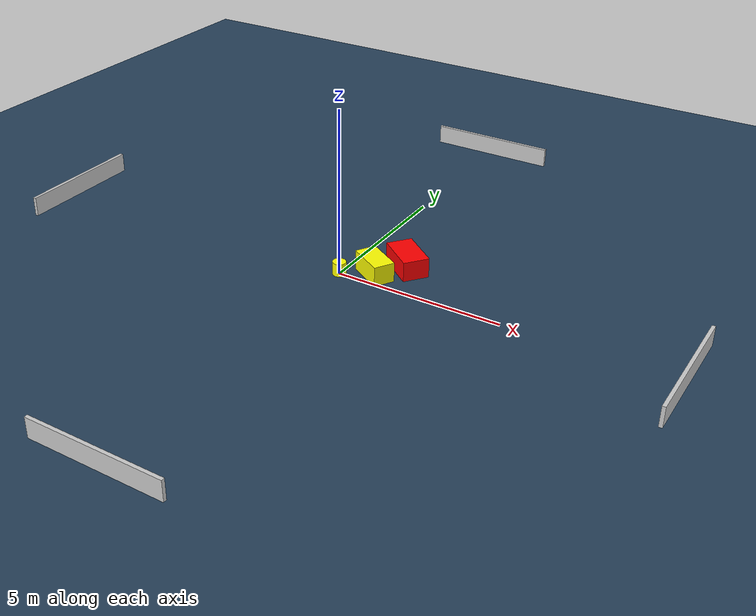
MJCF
<?xml version="1.0" ?>
<mujoco model="generated_environment">
  <option timestep="0.01" integrator="RK4" cone="elliptic"/>
  <default>
    <geom density="1"/>
  </default>
  <asset>
    <texture builtin="gradient" height="3072" name="skybox" rgb1="0.3 0.5 0.7" rgb2="0 0 0" type="skybox" width="512"/>
    <texture builtin="checker" height="300" name="groundplane" rgb1="0.2 0.3 0.4" rgb2="0.1 0.2 0.3" type="2d" width="300"/>
    <material name="groundplane" reflectance="0.2" texrepeat="5 5" texture="groundplane"/>
  </asset>
  <worldbody>
    <light dir="0 0 -1" directional="true" pos="0 0 1.5"/>
    <geom condim="3" friction="0.5 0.005 0.001" material="groundplane" name="floor" pos="0 0 0" size="0 0 0.05" type="plane"/>
    <body name="walls">
      <geom name="wall_1" condim="4" pos="-10.0 0.0 0.3" rgba="0.800000011920929 0.800000011920929 0.800000011920929 1.0" size="0.05 2.0 0.3" type="box"/>
      <geom name="wall_2" condim="4" pos="10.0 0.0 0.3" rgba="0.800000011920929 0.800000011920929 0.800000011920929 1.0" size="0.05 2.0 0.3" type="box"/>
      <geom name="wall_3" condim="4" pos="0.0 -10.0 0.3" rgba="0.800000011920929 0.800000011920929 0.800000011920929 1.0" size="2.0 0.05 0.3" type="box"/>
      <geom name="wall_4" condim="4" pos="0.0 10.0 0.3" rgba="0.800000011920929 0.800000011920929 0.800000011920929 1.0" size="2.0 0.05 0.3" type="box"/>
    </body>
    <body name="robot">
      <joint name="joint_x" type="slide" pos="0 0 0" axis="1 0 0"/>
      <joint name="joint_y" type="slide" pos="0 0 0" axis="0 1 0"/>
      <geom name="robot" type="cylinder" pos="0.0 0.0 0.2" size="0.2 0.2 0.0" mass="5.0" friction="1.0 0.005 0.0001" condim="4" rgba="1.0 1.0 0.0 1.0"/>
    </body>
    <body name="obstacle_1_movable">
      <geom name="obstacle_1_movable" condim="4" pos="0.8906465211030327 0.465883681023358 0.3" euler="0 0 59.061691022756364" friction="0.0 0.005 0.001" rgba="1.0 1.0 0.0 1.0" size="0.3184643201224888 0.56306087322415 0.3" type="box" mass="0.1"/>
      <joint type="free"/>
    </body>
    <body name="obstacle_2_static">
      <geom name="obstacle_2_static" condim="4" pos="1.5004092730577927 1.2720311429705233 0.3" euler="0 0 142.10866163534322" friction="0.0 0.005 0.001" rgba="1.0 0.0 0.0 1.0" size="0.6390007000416258 0.39155242271361534 0.3" type="box"/>
    </body>
  </worldbody>
  <actuator>
    <motor name="actuator_x" joint="joint_x" gear="1" ctrlrange="-1 1"/>
    <motor name="actuator_y" joint="joint_y" gear="1" ctrlrange="-1 1"/>
  </actuator>
</mujoco>
